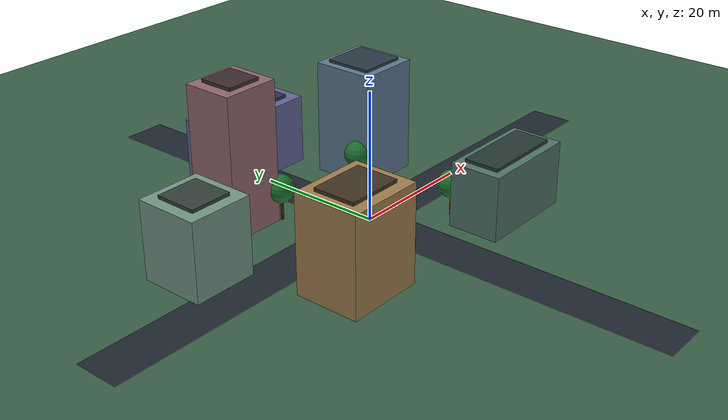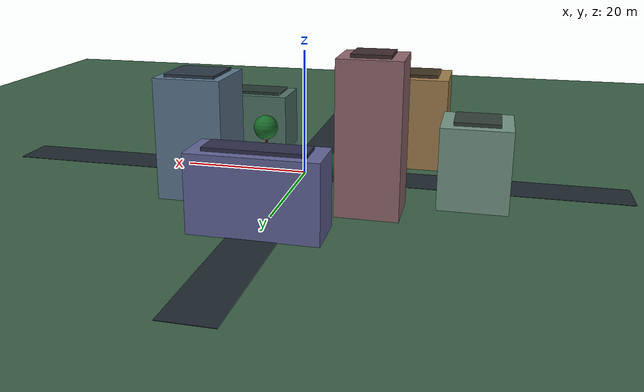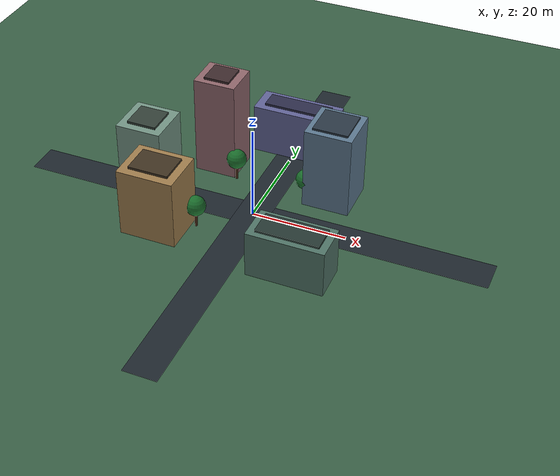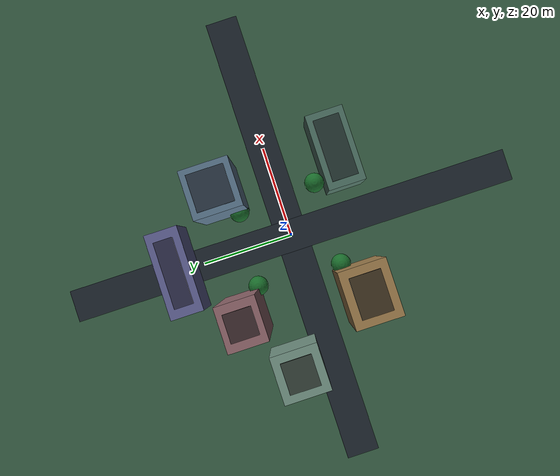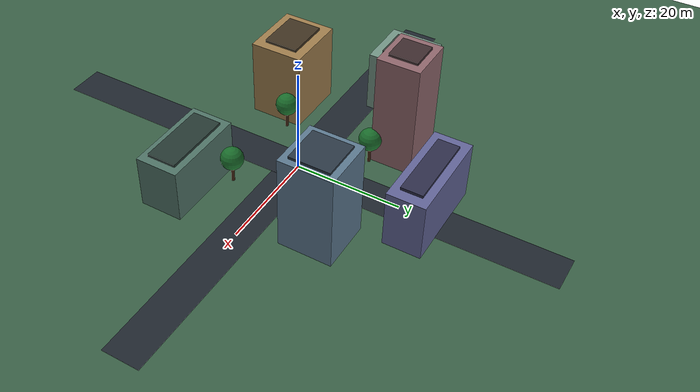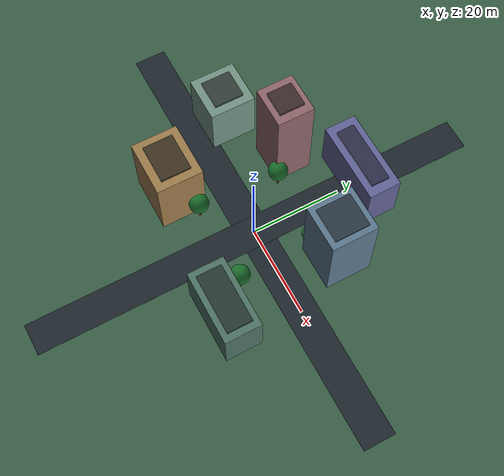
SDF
<?xml version="1.0" encoding="UTF-8"?>
<sdf version="1.9">
  <world name="urban_block">
    <physics type="ode">
      <max_step_size>0.004</max_step_size>
      <real_time_factor>1.0</real_time_factor>
      <real_time_update_rate>250</real_time_update_rate>
    </physics>
    <gravity>0 0 -9.8</gravity>
    <magnetic_field>6e-06 2.3e-05 -4.2e-05</magnetic_field>
    <atmosphere type="adiabatic"/>
    <scene>
      <grid>false</grid>
      <ambient>0.32 0.36 0.42 1</ambient>
      <background>0.42 0.58 0.72 1</background>
      <shadows>true</shadows>
    </scene>
    <spherical_coordinates>
      <surface_model>EARTH_WGS84</surface_model>
      <world_frame_orientation>ENU</world_frame_orientation>
      <latitude_deg>47.397971057728974</latitude_deg>
      <longitude_deg>8.546163739800146</longitude_deg>
      <elevation>0</elevation>
    </spherical_coordinates>
    <light name="sun" type="directional">
      <pose>0 0 500 0 0 0</pose>
      <cast_shadows>true</cast_shadows>
      <intensity>1.15</intensity>
      <direction>-0.25 0.45 -0.82</direction>
      <diffuse>1 0.96 0.9 1</diffuse>
      <specular>0.25 0.25 0.25 1</specular>
      <attenuation><range>2000</range><linear>0</linear><constant>1</constant><quadratic>0</quadratic></attenuation>
    </light>

    <model name="ground">
      <static>true</static>
      <link name="link">
        <collision name="collision"><geometry><plane><normal>0 0 1</normal><size>1 1</size></plane></geometry></collision>
        <visual name="visual">
          <geometry><plane><normal>0 0 1</normal><size>120 120</size></plane></geometry>
          <material><ambient>0.19 0.29 0.22 1</ambient><diffuse>0.22 0.37 0.27 1</diffuse><specular>0.04 0.04 0.04 1</specular></material>
        </visual>
      </link>
    </model>

    <!-- Two raised visual road surfaces; ground remains the collision plane. -->
    <model name="east_west_road"><static>true</static><pose>0 0 0.025 0 0 0</pose><link name="link"><visual name="visual"><geometry><box><size>100 7 0.05</size></box></geometry><material><ambient>0.08 0.1 0.13 1</ambient><diffuse>0.12 0.15 0.18 1</diffuse></material></visual></link></model>
    <model name="north_south_road"><static>true</static><pose>0 0 0.03 0 0 0</pose><link name="link"><visual name="visual"><geometry><box><size>7 100 0.06</size></box></geometry><material><ambient>0.08 0.1 0.13 1</ambient><diffuse>0.12 0.15 0.18 1</diffuse></material></visual></link></model>

    <!-- Keep a 10m x 10m open take-off square centred at the PX4 spawn. -->
    <model name="office_east">
      <static>true</static><pose>13 12 9 0 0 0</pose>
      <link name="link">
        <collision name="collision"><geometry><box><size>10 10 18</size></box></geometry></collision>
        <visual name="facade"><geometry><box><size>10 10 18</size></box></geometry><material><ambient>0.26 0.32 0.38 1</ambient><diffuse>0.36 0.47 0.56 1</diffuse><specular>0.48 0.55 0.62 1</specular></material></visual>
        <visual name="roof"><pose>0 0 9.2 0 0 0</pose><geometry><box><size>7.5 7.5 0.45</size></box></geometry><material><ambient>0.12 0.16 0.2 1</ambient><diffuse>0.17 0.22 0.27 1</diffuse></material></visual>
      </link>
    </model>
    <model name="tower_northwest">
      <static>true</static><pose>-13 14 11 0 0 0</pose>
      <link name="link">
        <collision name="collision"><geometry><box><size>9 8 22</size></box></geometry></collision>
        <visual name="facade"><geometry><box><size>9 8 22</size></box></geometry><material><ambient>0.35 0.29 0.3 1</ambient><diffuse>0.56 0.4 0.42 1</diffuse><specular>0.35 0.28 0.3 1</specular></material></visual>
        <visual name="roof"><pose>0 0 11.25 0 0 0</pose><geometry><box><size>5.5 5.5 0.5</size></box></geometry><material><ambient>0.17 0.12 0.13 1</ambient><diffuse>0.24 0.17 0.18 1</diffuse></material></visual>
      </link>
    </model>
    <model name="residential_west">
      <static>true</static><pose>-16 -11 7.5 0 0 0</pose>
      <link name="link">
        <collision name="collision"><geometry><box><size>12 10 15</size></box></geometry></collision>
        <visual name="facade"><geometry><box><size>12 10 15</size></box></geometry><material><ambient>0.38 0.31 0.2 1</ambient><diffuse>0.62 0.49 0.3 1</diffuse><specular>0.22 0.17 0.1 1</specular></material></visual>
        <visual name="roof"><pose>0 0 7.75 0 0 0</pose><geometry><box><size>8.5 6.5 0.5</size></box></geometry><material><ambient>0.19 0.15 0.09 1</ambient><diffuse>0.25 0.2 0.13 1</diffuse></material></visual>
      </link>
    </model>
    <model name="warehouse_southeast">
      <static>true</static><pose>14 -14 5 0 0 0</pose>
      <link name="link">
        <collision name="collision"><geometry><box><size>16 8 10</size></box></geometry></collision>
        <visual name="facade"><geometry><box><size>16 8 10</size></box></geometry><material><ambient>0.21 0.29 0.27 1</ambient><diffuse>0.31 0.45 0.4 1</diffuse><specular>0.2 0.28 0.25 1</specular></material></visual>
        <visual name="roof"><pose>0 0 5.25 0 0 0</pose><geometry><box><size>13 5.5 0.5</size></box></geometry><material><ambient>0.1 0.15 0.14 1</ambient><diffuse>0.15 0.22 0.2 1</diffuse></material></visual>
      </link>
    </model>
    <model name="library_north">
      <static>true</static><pose>0 25 5.5 0 0 0</pose>
      <link name="link">
        <collision name="collision"><geometry><box><size>18 7 11</size></box></geometry></collision>
        <visual name="facade"><geometry><box><size>18 7 11</size></box></geometry><material><ambient>0.25 0.25 0.35 1</ambient><diffuse>0.38 0.39 0.59 1</diffuse><specular>0.25 0.25 0.38 1</specular></material></visual>
        <visual name="roof"><pose>0 0 5.75 0 0 0</pose><geometry><box><size>14 4 0.5</size></box></geometry><material><ambient>0.12 0.12 0.19 1</ambient><diffuse>0.18 0.18 0.29 1</diffuse></material></visual>
      </link>
    </model>
    <model name="clinic_west">
      <static>true</static><pose>-27 7 6 0 0 0</pose>
      <link name="link">
        <collision name="collision"><geometry><box><size>10 10 12</size></box></geometry></collision>
        <visual name="facade"><geometry><box><size>10 10 12</size></box></geometry><material><ambient>0.3 0.35 0.32 1</ambient><diffuse>0.45 0.58 0.52 1</diffuse><specular>0.28 0.34 0.3 1</specular></material></visual>
        <visual name="roof"><pose>0 0 6.25 0 0 0</pose><geometry><box><size>6.5 6.5 0.5</size></box></geometry><material><ambient>0.14 0.18 0.16 1</ambient><diffuse>0.2 0.25 0.22 1</diffuse></material></visual>
      </link>
    </model>

    <!-- Sparse trees make the lower-altitude LiDAR and side cameras useful. -->
    <model name="tree_a"><static>true</static><pose>8 9 0 0 0 0</pose><link name="link"><collision name="trunk_collision"><pose>0 0 2 0 0 0</pose><geometry><cylinder><radius>0.28</radius><length>4</length></cylinder></geometry></collision><visual name="trunk"><pose>0 0 2 0 0 0</pose><geometry><cylinder><radius>0.28</radius><length>4</length></cylinder></geometry><material><diffuse>0.22 0.12 0.05 1</diffuse></material></visual><visual name="foliage"><pose>0 0 5 0 0 0</pose><geometry><sphere><radius>2.1</radius></sphere></geometry><material><ambient>0.06 0.25 0.1 1</ambient><diffuse>0.1 0.43 0.17 1</diffuse></material></visual></link></model>
    <model name="tree_b"><static>true</static><pose>-8 10 0 0 0 0</pose><link name="link"><collision name="trunk_collision"><pose>0 0 2 0 0 0</pose><geometry><cylinder><radius>0.28</radius><length>4</length></cylinder></geometry></collision><visual name="trunk"><pose>0 0 2 0 0 0</pose><geometry><cylinder><radius>0.28</radius><length>4</length></cylinder></geometry><material><diffuse>0.22 0.12 0.05 1</diffuse></material></visual><visual name="foliage"><pose>0 0 5 0 0 0</pose><geometry><sphere><radius>2.1</radius></sphere></geometry><material><ambient>0.06 0.25 0.1 1</ambient><diffuse>0.1 0.43 0.17 1</diffuse></material></visual></link></model>
    <model name="tree_c"><static>true</static><pose>-9 -8 0 0 0 0</pose><link name="link"><collision name="trunk_collision"><pose>0 0 2 0 0 0</pose><geometry><cylinder><radius>0.28</radius><length>4</length></cylinder></geometry></collision><visual name="trunk"><pose>0 0 2 0 0 0</pose><geometry><cylinder><radius>0.28</radius><length>4</length></cylinder></geometry><material><diffuse>0.22 0.12 0.05 1</diffuse></material></visual><visual name="foliage"><pose>0 0 5 0 0 0</pose><geometry><sphere><radius>2.1</radius></sphere></geometry><material><ambient>0.06 0.25 0.1 1</ambient><diffuse>0.1 0.43 0.17 1</diffuse></material></visual></link></model>
    <model name="tree_d"><static>true</static><pose>9 -8 0 0 0 0</pose><link name="link"><collision name="trunk_collision"><pose>0 0 2 0 0 0</pose><geometry><cylinder><radius>0.28</radius><length>4</length></cylinder></geometry></collision><visual name="trunk"><pose>0 0 2 0 0 0</pose><geometry><cylinder><radius>0.28</radius><length>4</length></cylinder></geometry><material><diffuse>0.22 0.12 0.05 1</diffuse></material></visual><visual name="foliage"><pose>0 0 5 0 0 0</pose><geometry><sphere><radius>2.1</radius></sphere></geometry><material><ambient>0.06 0.25 0.1 1</ambient><diffuse>0.1 0.43 0.17 1</diffuse></material></visual></link></model>
  </world>
</sdf>
